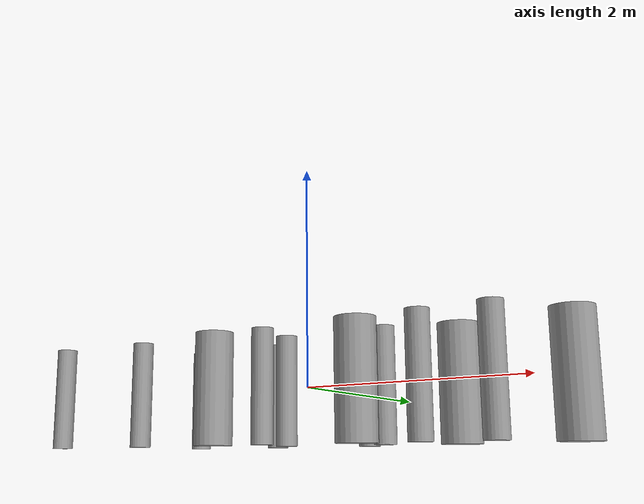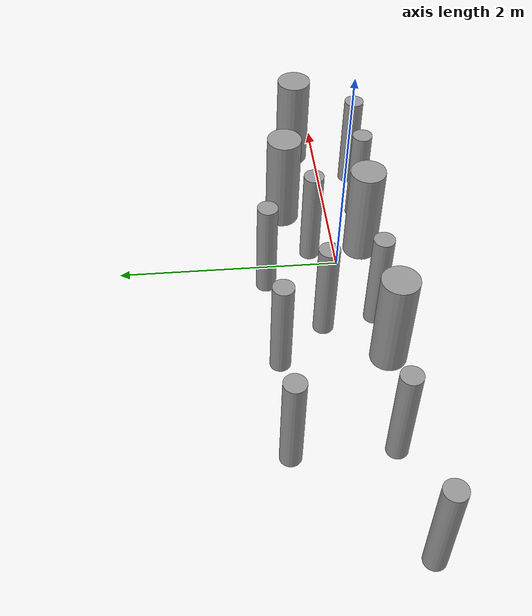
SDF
<?xml version='1.0'?>
<sdf version='1.6'>
  <model name='cyl_wall'>
    <link name='link_0'>
      <pose frame=''>-2.73893 -0.366465 0 0 -0 0</pose>
      <inertial>
        <mass>0.0374993</mass>
        <inertia>
          <ixx>0.00321281</ixx>
          <ixy>0</ixy>
          <ixz>0</ixz>
          <iyy>0.00321281</iyy>
          <iyz>0</iyz>
          <izz>0.000175774</izz>
        </inertia>
        <pose frame=''>0 0 0 0 -0 0</pose>
      </inertial>
      <visual name='visual'>
        <pose frame=''>0 0 0 0 -0 0</pose>
        <geometry>
          <cylinder>
            <radius>0.0968661</radius>
            <length>1</length>
          </cylinder>
        </geometry>
        <material>
          <lighting>1</lighting>
          <script>
            <uri>file://media/materials/scripts/gazebo.material</uri>
            <name>Gazebo/Grey</name>
          </script>
          <ambient>0.3 0.3 0.3 1</ambient>
          <diffuse>0.7 0.7 0.7 1</diffuse>
          <specular>0.01 0.01 0.01 1</specular>
          <emissive>0 0 0 1</emissive>
        </material>
        <cast_shadows>1</cast_shadows>
        <transparency>0</transparency>
      </visual>
      <collision name='collision'>
        <laser_retro>0</laser_retro>
        <max_contacts>10</max_contacts>
        <pose frame=''>0 0 0 0 -0 0</pose>
        <geometry>
          <cylinder>
            <radius>0.096866</radius>
            <length>1</length>
          </cylinder>
        </geometry>
        <surface>
          <friction>
            <ode>
              <mu>1</mu>
              <mu2>1</mu2>
              <fdir1>0 0 0</fdir1>
              <slip1>0</slip1>
              <slip2>0</slip2>
            </ode>
            <torsional>
              <coefficient>1</coefficient>
              <patch_radius>0</patch_radius>
              <surface_radius>0</surface_radius>
              <use_patch_radius>1</use_patch_radius>
              <ode>
                <slip>0</slip>
              </ode>
            </torsional>
          </friction>
          <bounce>
            <restitution_coefficient>0</restitution_coefficient>
            <threshold>1e+06</threshold>
          </bounce>
          <contact>
            <collide_without_contact>0</collide_without_contact>
            <collide_without_contact_bitmask>1</collide_without_contact_bitmask>
            <collide_bitmask>1</collide_bitmask>
            <ode>
              <soft_cfm>0</soft_cfm>
              <soft_erp>0.2</soft_erp>
              <kp>1e+13</kp>
              <kd>1</kd>
              <max_vel>0.01</max_vel>
              <min_depth>0</min_depth>
            </ode>
            <bullet>
              <split_impulse>1</split_impulse>
              <split_impulse_penetration_threshold>-0.01</split_impulse_penetration_threshold>
              <soft_cfm>0</soft_cfm>
              <soft_erp>0.2</soft_erp>
              <kp>1e+13</kp>
              <kd>1</kd>
            </bullet>
          </contact>
        </surface>
      </collision>
    </link>
    <link name='link_0_clone'>
      <pose frame=''>-1.73893 0.61877 0 0 -0 0</pose>
      <inertial>
        <mass>0.0374993</mass>
        <inertia>
          <ixx>0.00321281</ixx>
          <ixy>0</ixy>
          <ixz>0</ixz>
          <iyy>0.00321281</iyy>
          <iyz>0</iyz>
          <izz>0.000175774</izz>
        </inertia>
        <pose frame=''>0 0 0 0 -0 0</pose>
      </inertial>
      <visual name='visual'>
        <pose frame=''>0 0 0 0 -0 0</pose>
        <geometry>
          <cylinder>
            <radius>0.0968661</radius>
            <length>1</length>
          </cylinder>
        </geometry>
        <material>
          <lighting>1</lighting>
          <script>
            <uri>file://media/materials/scripts/gazebo.material</uri>
            <name>Gazebo/Grey</name>
          </script>
          <ambient>0.3 0.3 0.3 1</ambient>
          <diffuse>0.7 0.7 0.7 1</diffuse>
          <specular>0.01 0.01 0.01 1</specular>
          <emissive>0 0 0 1</emissive>
          <shader type='pixel'/>
        </material>
        <cast_shadows>1</cast_shadows>
        <transparency>0</transparency>
      </visual>
      <collision name='collision'>
        <laser_retro>0</laser_retro>
        <max_contacts>10</max_contacts>
        <pose frame=''>0 0 0 0 -0 0</pose>
        <geometry>
          <cylinder>
            <radius>0.096866</radius>
            <length>1</length>
          </cylinder>
        </geometry>
        <surface>
          <friction>
            <ode>
              <mu>1</mu>
              <mu2>1</mu2>
              <fdir1>0 0 0</fdir1>
              <slip1>0</slip1>
              <slip2>0</slip2>
            </ode>
            <torsional>
              <coefficient>1</coefficient>
              <patch_radius>0</patch_radius>
              <surface_radius>0</surface_radius>
              <use_patch_radius>1</use_patch_radius>
              <ode>
                <slip>0</slip>
              </ode>
            </torsional>
          </friction>
          <bounce>
            <restitution_coefficient>0</restitution_coefficient>
            <threshold>1e+06</threshold>
          </bounce>
          <contact>
            <collide_without_contact>0</collide_without_contact>
            <collide_without_contact_bitmask>1</collide_without_contact_bitmask>
            <collide_bitmask>1</collide_bitmask>
            <ode>
              <soft_cfm>0</soft_cfm>
              <soft_erp>0.2</soft_erp>
              <kp>1e+13</kp>
              <kd>1</kd>
              <max_vel>0.01</max_vel>
              <min_depth>0</min_depth>
            </ode>
            <bullet>
              <split_impulse>1</split_impulse>
              <split_impulse_penetration_threshold>-0.01</split_impulse_penetration_threshold>
              <soft_cfm>0</soft_cfm>
              <soft_erp>0.2</soft_erp>
              <kp>1e+13</kp>
              <kd>1</kd>
            </bullet>
          </contact>
        </surface>
      </collision>
    </link>
    <link name='link_0_clone_clone'>
      <pose frame=''>-0.327073 0.143919 0 0 -0 0</pose>
      <inertial>
        <mass>0.0374993</mass>
        <inertia>
          <ixx>0.00321281</ixx>
          <ixy>0</ixy>
          <ixz>0</ixz>
          <iyy>0.00321281</iyy>
          <iyz>0</iyz>
          <izz>0.000175774</izz>
        </inertia>
        <pose frame=''>0 0 0 0 -0 0</pose>
      </inertial>
      <visual name='visual'>
        <pose frame=''>0 0 0 0 -0 0</pose>
        <geometry>
          <cylinder>
            <radius>0.0968661</radius>
            <length>1</length>
          </cylinder>
        </geometry>
        <material>
          <lighting>1</lighting>
          <script>
            <uri>file://media/materials/scripts/gazebo.material</uri>
            <name>Gazebo/Grey</name>
          </script>
          <ambient>0.3 0.3 0.3 1</ambient>
          <diffuse>0.7 0.7 0.7 1</diffuse>
          <specular>0.01 0.01 0.01 1</specular>
          <emissive>0 0 0 1</emissive>
          <shader type='pixel'/>
        </material>
        <cast_shadows>1</cast_shadows>
        <transparency>0</transparency>
      </visual>
      <collision name='collision'>
        <laser_retro>0</laser_retro>
        <max_contacts>10</max_contacts>
        <pose frame=''>0 0 0 0 -0 0</pose>
        <geometry>
          <cylinder>
            <radius>0.096866</radius>
            <length>1</length>
          </cylinder>
        </geometry>
        <surface>
          <friction>
            <ode>
              <mu>1</mu>
              <mu2>1</mu2>
              <fdir1>0 0 0</fdir1>
              <slip1>0</slip1>
              <slip2>0</slip2>
            </ode>
            <torsional>
              <coefficient>1</coefficient>
              <patch_radius>0</patch_radius>
              <surface_radius>0</surface_radius>
              <use_patch_radius>1</use_patch_radius>
              <ode>
                <slip>0</slip>
              </ode>
            </torsional>
          </friction>
          <bounce>
            <restitution_coefficient>0</restitution_coefficient>
            <threshold>1e+06</threshold>
          </bounce>
          <contact>
            <collide_without_contact>0</collide_without_contact>
            <collide_without_contact_bitmask>1</collide_without_contact_bitmask>
            <collide_bitmask>1</collide_bitmask>
            <ode>
              <soft_cfm>0</soft_cfm>
              <soft_erp>0.2</soft_erp>
              <kp>1e+13</kp>
              <kd>1</kd>
              <max_vel>0.01</max_vel>
              <min_depth>0</min_depth>
            </ode>
            <bullet>
              <split_impulse>1</split_impulse>
              <split_impulse_penetration_threshold>-0.01</split_impulse_penetration_threshold>
              <soft_cfm>0</soft_cfm>
              <soft_erp>0.2</soft_erp>
              <kp>1e+13</kp>
              <kd>1</kd>
            </bullet>
          </contact>
        </surface>
      </collision>
    </link>
    <link name='link_0_clone_clone_0'>
      <pose frame=''>1.26107 -0.419359 0 0 -0 0</pose>
      <inertial>
        <mass>0.0374993</mass>
        <inertia>
          <ixx>0.00321281</ixx>
          <ixy>0</ixy>
          <ixz>0</ixz>
          <iyy>0.00321281</iyy>
          <iyz>0</iyz>
          <izz>0.000175774</izz>
        </inertia>
        <pose frame=''>0 0 0 0 -0 0</pose>
      </inertial>
      <visual name='visual'>
        <pose frame=''>0 0 0 0 -0 0</pose>
        <geometry>
          <cylinder>
            <radius>0.0968661</radius>
            <length>1</length>
          </cylinder>
        </geometry>
        <material>
          <lighting>1</lighting>
          <script>
            <uri>file://media/materials/scripts/gazebo.material</uri>
            <name>Gazebo/Grey</name>
          </script>
          <ambient>0.3 0.3 0.3 1</ambient>
          <diffuse>0.7 0.7 0.7 1</diffuse>
          <specular>0.01 0.01 0.01 1</specular>
          <emissive>0 0 0 1</emissive>
          <shader type='pixel'/>
        </material>
        <cast_shadows>1</cast_shadows>
        <transparency>0</transparency>
      </visual>
      <collision name='collision'>
        <laser_retro>0</laser_retro>
        <max_contacts>10</max_contacts>
        <pose frame=''>0 0 0 0 -0 0</pose>
        <geometry>
          <cylinder>
            <radius>0.096866</radius>
            <length>1</length>
          </cylinder>
        </geometry>
        <surface>
          <friction>
            <ode>
              <mu>1</mu>
              <mu2>1</mu2>
              <fdir1>0 0 0</fdir1>
              <slip1>0</slip1>
              <slip2>0</slip2>
            </ode>
            <torsional>
              <coefficient>1</coefficient>
              <patch_radius>0</patch_radius>
              <surface_radius>0</surface_radius>
              <use_patch_radius>1</use_patch_radius>
              <ode>
                <slip>0</slip>
              </ode>
            </torsional>
          </friction>
          <bounce>
            <restitution_coefficient>0</restitution_coefficient>
            <threshold>1e+06</threshold>
          </bounce>
          <contact>
            <collide_without_contact>0</collide_without_contact>
            <collide_without_contact_bitmask>1</collide_without_contact_bitmask>
            <collide_bitmask>1</collide_bitmask>
            <ode>
              <soft_cfm>0</soft_cfm>
              <soft_erp>0.2</soft_erp>
              <kp>1e+13</kp>
              <kd>1</kd>
              <max_vel>0.01</max_vel>
              <min_depth>0</min_depth>
            </ode>
            <bullet>
              <split_impulse>1</split_impulse>
              <split_impulse_penetration_threshold>-0.01</split_impulse_penetration_threshold>
              <soft_cfm>0</soft_cfm>
              <soft_erp>0.2</soft_erp>
              <kp>1e+13</kp>
              <kd>1</kd>
            </bullet>
          </contact>
        </surface>
      </collision>
    </link>
    <link name='link_0_clone_clone_1'>
      <pose frame=''>-1.73893 -0.277168 0 0 -0 0</pose>
      <inertial>
        <mass>0.0374993</mass>
        <inertia>
          <ixx>0.00321281</ixx>
          <ixy>0</ixy>
          <ixz>0</ixz>
          <iyy>0.00321281</iyy>
          <iyz>0</iyz>
          <izz>0.000175774</izz>
        </inertia>
        <pose frame=''>0 0 0 0 -0 0</pose>
      </inertial>
      <visual name='visual'>
        <pose frame=''>0 0 0 0 -0 0</pose>
        <geometry>
          <cylinder>
            <radius>0.0968661</radius>
            <length>1</length>
          </cylinder>
        </geometry>
        <material>
          <lighting>1</lighting>
          <script>
            <uri>file://media/materials/scripts/gazebo.material</uri>
            <name>Gazebo/Grey</name>
          </script>
          <ambient>0.3 0.3 0.3 1</ambient>
          <diffuse>0.7 0.7 0.7 1</diffuse>
          <specular>0.01 0.01 0.01 1</specular>
          <emissive>0 0 0 1</emissive>
          <shader type='pixel'/>
        </material>
        <cast_shadows>1</cast_shadows>
        <transparency>0</transparency>
      </visual>
      <collision name='collision'>
        <laser_retro>0</laser_retro>
        <max_contacts>10</max_contacts>
        <pose frame=''>0 0 0 0 -0 0</pose>
        <geometry>
          <cylinder>
            <radius>0.096866</radius>
            <length>1</length>
          </cylinder>
        </geometry>
        <surface>
          <friction>
            <ode>
              <mu>1</mu>
              <mu2>1</mu2>
              <fdir1>0 0 0</fdir1>
              <slip1>0</slip1>
              <slip2>0</slip2>
            </ode>
            <torsional>
              <coefficient>1</coefficient>
              <patch_radius>0</patch_radius>
              <surface_radius>0</surface_radius>
              <use_patch_radius>1</use_patch_radius>
              <ode>
                <slip>0</slip>
              </ode>
            </torsional>
          </friction>
          <bounce>
            <restitution_coefficient>0</restitution_coefficient>
            <threshold>1e+06</threshold>
          </bounce>
          <contact>
            <collide_without_contact>0</collide_without_contact>
            <collide_without_contact_bitmask>1</collide_without_contact_bitmask>
            <collide_bitmask>1</collide_bitmask>
            <ode>
              <soft_cfm>0</soft_cfm>
              <soft_erp>0.2</soft_erp>
              <kp>1e+13</kp>
              <kd>1</kd>
              <max_vel>0.01</max_vel>
              <min_depth>0</min_depth>
            </ode>
            <bullet>
              <split_impulse>1</split_impulse>
              <split_impulse_penetration_threshold>-0.01</split_impulse_penetration_threshold>
              <soft_cfm>0</soft_cfm>
              <soft_erp>0.2</soft_erp>
              <kp>1e+13</kp>
              <kd>1</kd>
            </bullet>
          </contact>
        </surface>
      </collision>
    </link>
    <link name='link_0_clone_clone_2'>
      <pose frame=''>-0.738934 0.593961 0 0 -0 0</pose>
      <inertial>
        <mass>0.0374993</mass>
        <inertia>
          <ixx>0.00321281</ixx>
          <ixy>0</ixy>
          <ixz>0</ixz>
          <iyy>0.00321281</iyy>
          <iyz>0</iyz>
          <izz>0.000175774</izz>
        </inertia>
        <pose frame=''>0 0 0 0 -0 0</pose>
      </inertial>
      <visual name='visual'>
        <pose frame=''>0 0 0 0 -0 0</pose>
        <geometry>
          <cylinder>
            <radius>0.0968661</radius>
            <length>1</length>
          </cylinder>
        </geometry>
        <material>
          <lighting>1</lighting>
          <script>
            <uri>file://media/materials/scripts/gazebo.material</uri>
            <name>Gazebo/Grey</name>
          </script>
          <ambient>0.3 0.3 0.3 1</ambient>
          <diffuse>0.7 0.7 0.7 1</diffuse>
          <specular>0.01 0.01 0.01 1</specular>
          <emissive>0 0 0 1</emissive>
          <shader type='pixel'/>
        </material>
        <cast_shadows>1</cast_shadows>
        <transparency>0</transparency>
      </visual>
      <collision name='collision'>
        <laser_retro>0</laser_retro>
        <max_contacts>10</max_contacts>
        <pose frame=''>0 0 0 0 -0 0</pose>
        <geometry>
          <cylinder>
            <radius>0.096866</radius>
            <length>1</length>
          </cylinder>
        </geometry>
        <surface>
          <friction>
            <ode>
              <mu>1</mu>
              <mu2>1</mu2>
              <fdir1>0 0 0</fdir1>
              <slip1>0</slip1>
              <slip2>0</slip2>
            </ode>
            <torsional>
              <coefficient>1</coefficient>
              <patch_radius>0</patch_radius>
              <surface_radius>0</surface_radius>
              <use_patch_radius>1</use_patch_radius>
              <ode>
                <slip>0</slip>
              </ode>
            </torsional>
          </friction>
          <bounce>
            <restitution_coefficient>0</restitution_coefficient>
            <threshold>1e+06</threshold>
          </bounce>
          <contact>
            <collide_without_contact>0</collide_without_contact>
            <collide_without_contact_bitmask>1</collide_without_contact_bitmask>
            <collide_bitmask>1</collide_bitmask>
            <ode>
              <soft_cfm>0</soft_cfm>
              <soft_erp>0.2</soft_erp>
              <kp>1e+13</kp>
              <kd>1</kd>
              <max_vel>0.01</max_vel>
              <min_depth>0</min_depth>
            </ode>
            <bullet>
              <split_impulse>1</split_impulse>
              <split_impulse_penetration_threshold>-0.01</split_impulse_penetration_threshold>
              <soft_cfm>0</soft_cfm>
              <soft_erp>0.2</soft_erp>
              <kp>1e+13</kp>
              <kd>1</kd>
            </bullet>
          </contact>
        </surface>
      </collision>
    </link>
    <link name='link_0_clone_clone_3'>
      <pose frame=''>0.261066 0.624849 0 0 -0 0</pose>
      <inertial>
        <mass>0.0374993</mass>
        <inertia>
          <ixx>0.00321281</ixx>
          <ixy>0</ixy>
          <ixz>0</ixz>
          <iyy>0.00321281</iyy>
          <iyz>0</iyz>
          <izz>0.000175774</izz>
        </inertia>
        <pose frame=''>0 0 0 0 -0 0</pose>
      </inertial>
      <visual name='visual'>
        <pose frame=''>0 0 0 0 -0 0</pose>
        <geometry>
          <cylinder>
            <radius>0.0968661</radius>
            <length>1</length>
          </cylinder>
        </geometry>
        <material>
          <lighting>1</lighting>
          <script>
            <uri>file://media/materials/scripts/gazebo.material</uri>
            <name>Gazebo/Grey</name>
          </script>
          <ambient>0.3 0.3 0.3 1</ambient>
          <diffuse>0.7 0.7 0.7 1</diffuse>
          <specular>0.01 0.01 0.01 1</specular>
          <emissive>0 0 0 1</emissive>
          <shader type='pixel'/>
        </material>
        <cast_shadows>1</cast_shadows>
        <transparency>0</transparency>
      </visual>
      <collision name='collision'>
        <laser_retro>0</laser_retro>
        <max_contacts>10</max_contacts>
        <pose frame=''>0 0 0 0 -0 0</pose>
        <geometry>
          <cylinder>
            <radius>0.096866</radius>
            <length>1</length>
          </cylinder>
        </geometry>
        <surface>
          <friction>
            <ode>
              <mu>1</mu>
              <mu2>1</mu2>
              <fdir1>0 0 0</fdir1>
              <slip1>0</slip1>
              <slip2>0</slip2>
            </ode>
            <torsional>
              <coefficient>1</coefficient>
              <patch_radius>0</patch_radius>
              <surface_radius>0</surface_radius>
              <use_patch_radius>1</use_patch_radius>
              <ode>
                <slip>0</slip>
              </ode>
            </torsional>
          </friction>
          <bounce>
            <restitution_coefficient>0</restitution_coefficient>
            <threshold>1e+06</threshold>
          </bounce>
          <contact>
            <collide_without_contact>0</collide_without_contact>
            <collide_without_contact_bitmask>1</collide_without_contact_bitmask>
            <collide_bitmask>1</collide_bitmask>
            <ode>
              <soft_cfm>0</soft_cfm>
              <soft_erp>0.2</soft_erp>
              <kp>1e+13</kp>
              <kd>1</kd>
              <max_vel>0.01</max_vel>
              <min_depth>0</min_depth>
            </ode>
            <bullet>
              <split_impulse>1</split_impulse>
              <split_impulse_penetration_threshold>-0.01</split_impulse_penetration_threshold>
              <soft_cfm>0</soft_cfm>
              <soft_erp>0.2</soft_erp>
              <kp>1e+13</kp>
              <kd>1</kd>
            </bullet>
          </contact>
        </surface>
      </collision>
    </link>
    <link name='link_0_clone_clone_4'>
      <pose frame=''>-0.239049 -0.353105 0 0 -0 0</pose>
      <inertial>
        <mass>0.0374993</mass>
        <inertia>
          <ixx>0.00321281</ixx>
          <ixy>0</ixy>
          <ixz>0</ixz>
          <iyy>0.00321281</iyy>
          <iyz>0</iyz>
          <izz>0.000175774</izz>
        </inertia>
        <pose frame=''>0 0 0 0 -0 0</pose>
      </inertial>
      <visual name='visual'>
        <pose frame=''>0 0 0 0 -0 0</pose>
        <geometry>
          <cylinder>
            <radius>0.0968661</radius>
            <length>1</length>
          </cylinder>
        </geometry>
        <material>
          <lighting>1</lighting>
          <script>
            <uri>file://media/materials/scripts/gazebo.material</uri>
            <name>Gazebo/Grey</name>
          </script>
          <ambient>0.3 0.3 0.3 1</ambient>
          <diffuse>0.7 0.7 0.7 1</diffuse>
          <specular>0.01 0.01 0.01 1</specular>
          <emissive>0 0 0 1</emissive>
          <shader type='pixel'/>
        </material>
        <cast_shadows>1</cast_shadows>
        <transparency>0</transparency>
      </visual>
      <collision name='collision'>
        <laser_retro>0</laser_retro>
        <max_contacts>10</max_contacts>
        <pose frame=''>0 0 0 0 -0 0</pose>
        <geometry>
          <cylinder>
            <radius>0.096866</radius>
            <length>1</length>
          </cylinder>
        </geometry>
        <surface>
          <friction>
            <ode>
              <mu>1</mu>
              <mu2>1</mu2>
              <fdir1>0 0 0</fdir1>
              <slip1>0</slip1>
              <slip2>0</slip2>
            </ode>
            <torsional>
              <coefficient>1</coefficient>
              <patch_radius>0</patch_radius>
              <surface_radius>0</surface_radius>
              <use_patch_radius>1</use_patch_radius>
              <ode>
                <slip>0</slip>
              </ode>
            </torsional>
          </friction>
          <bounce>
            <restitution_coefficient>0</restitution_coefficient>
            <threshold>1e+06</threshold>
          </bounce>
          <contact>
            <collide_without_contact>0</collide_without_contact>
            <collide_without_contact_bitmask>1</collide_without_contact_bitmask>
            <collide_bitmask>1</collide_bitmask>
            <ode>
              <soft_cfm>0</soft_cfm>
              <soft_erp>0.2</soft_erp>
              <kp>1e+13</kp>
              <kd>1</kd>
              <max_vel>0.01</max_vel>
              <min_depth>0</min_depth>
            </ode>
            <bullet>
              <split_impulse>1</split_impulse>
              <split_impulse_penetration_threshold>-0.01</split_impulse_penetration_threshold>
              <soft_cfm>0</soft_cfm>
              <soft_erp>0.2</soft_erp>
              <kp>1e+13</kp>
              <kd>1</kd>
            </bullet>
          </contact>
        </surface>
      </collision>
    </link>
    <link name='link_0_clone_clone_5'>
      <pose frame=''>0.672792 0.143919 0 0 -0 0</pose>
      <inertial>
        <mass>0.0374993</mass>
        <inertia>
          <ixx>0.00321281</ixx>
          <ixy>0</ixy>
          <ixz>0</ixz>
          <iyy>0.00321281</iyy>
          <iyz>0</iyz>
          <izz>0.000175774</izz>
        </inertia>
        <pose frame=''>0 0 0 0 -0 0</pose>
      </inertial>
      <visual name='visual'>
        <pose frame=''>0 0 0 0 -0 0</pose>
        <geometry>
          <cylinder>
            <radius>0.0968661</radius>
            <length>1</length>
          </cylinder>
        </geometry>
        <material>
          <lighting>1</lighting>
          <script>
            <uri>file://media/materials/scripts/gazebo.material</uri>
            <name>Gazebo/Grey</name>
          </script>
          <ambient>0.3 0.3 0.3 1</ambient>
          <diffuse>0.7 0.7 0.7 1</diffuse>
          <specular>0.01 0.01 0.01 1</specular>
          <emissive>0 0 0 1</emissive>
          <shader type='pixel'/>
        </material>
        <cast_shadows>1</cast_shadows>
        <transparency>0</transparency>
      </visual>
      <collision name='collision'>
        <laser_retro>0</laser_retro>
        <max_contacts>10</max_contacts>
        <pose frame=''>0 0 0 0 -0 0</pose>
        <geometry>
          <cylinder>
            <radius>0.096866</radius>
            <length>1</length>
          </cylinder>
        </geometry>
        <surface>
          <friction>
            <ode>
              <mu>1</mu>
              <mu2>1</mu2>
              <fdir1>0 0 0</fdir1>
              <slip1>0</slip1>
              <slip2>0</slip2>
            </ode>
            <torsional>
              <coefficient>1</coefficient>
              <patch_radius>0</patch_radius>
              <surface_radius>0</surface_radius>
              <use_patch_radius>1</use_patch_radius>
              <ode>
                <slip>0</slip>
              </ode>
            </torsional>
          </friction>
          <bounce>
            <restitution_coefficient>0</restitution_coefficient>
            <threshold>1e+06</threshold>
          </bounce>
          <contact>
            <collide_without_contact>0</collide_without_contact>
            <collide_without_contact_bitmask>1</collide_without_contact_bitmask>
            <collide_bitmask>1</collide_bitmask>
            <ode>
              <soft_cfm>0</soft_cfm>
              <soft_erp>0.2</soft_erp>
              <kp>1e+13</kp>
              <kd>1</kd>
              <max_vel>0.01</max_vel>
              <min_depth>0</min_depth>
            </ode>
            <bullet>
              <split_impulse>1</split_impulse>
              <split_impulse_penetration_threshold>-0.01</split_impulse_penetration_threshold>
              <soft_cfm>0</soft_cfm>
              <soft_erp>0.2</soft_erp>
              <kp>1e+13</kp>
              <kd>1</kd>
            </bullet>
          </contact>
        </surface>
      </collision>
    </link>
    <link name='link_0_clone_clone_6'>
      <pose frame=''>1.84596 -0.433423 0 0 -0 0</pose>
      <inertial>
        <mass>0.0374993</mass>
        <inertia>
          <ixx>0.00321281</ixx>
          <ixy>0</ixy>
          <ixz>0</ixz>
          <iyy>0.00321281</iyy>
          <iyz>0</iyz>
          <izz>0.000175774</izz>
        </inertia>
        <pose frame=''>0 0 0 0 -0 0</pose>
      </inertial>
      <visual name='visual'>
        <pose frame=''>0 0 0 0 -0 0</pose>
        <geometry>
          <cylinder>
            <radius>0.0968661</radius>
            <length>1</length>
          </cylinder>
        </geometry>
        <material>
          <lighting>1</lighting>
          <script>
            <uri>file://media/materials/scripts/gazebo.material</uri>
            <name>Gazebo/Grey</name>
          </script>
          <ambient>0.3 0.3 0.3 1</ambient>
          <diffuse>0.7 0.7 0.7 1</diffuse>
          <specular>0.01 0.01 0.01 1</specular>
          <emissive>0 0 0 1</emissive>
          <shader type='pixel'/>
        </material>
        <cast_shadows>1</cast_shadows>
        <transparency>0</transparency>
      </visual>
      <collision name='collision'>
        <laser_retro>0</laser_retro>
        <max_contacts>10</max_contacts>
        <pose frame=''>0 0 0 0 -0 0</pose>
        <geometry>
          <cylinder>
            <radius>0.096866</radius>
            <length>1</length>
          </cylinder>
        </geometry>
        <surface>
          <friction>
            <ode>
              <mu>1</mu>
              <mu2>1</mu2>
              <fdir1>0 0 0</fdir1>
              <slip1>0</slip1>
              <slip2>0</slip2>
            </ode>
            <torsional>
              <coefficient>1</coefficient>
              <patch_radius>0</patch_radius>
              <surface_radius>0</surface_radius>
              <use_patch_radius>1</use_patch_radius>
              <ode>
                <slip>0</slip>
              </ode>
            </torsional>
          </friction>
          <bounce>
            <restitution_coefficient>0</restitution_coefficient>
            <threshold>1e+06</threshold>
          </bounce>
          <contact>
            <collide_without_contact>0</collide_without_contact>
            <collide_without_contact_bitmask>1</collide_without_contact_bitmask>
            <collide_bitmask>1</collide_bitmask>
            <ode>
              <soft_cfm>0</soft_cfm>
              <soft_erp>0.2</soft_erp>
              <kp>1e+13</kp>
              <kd>1</kd>
              <max_vel>0.01</max_vel>
              <min_depth>0</min_depth>
            </ode>
            <bullet>
              <split_impulse>1</split_impulse>
              <split_impulse_penetration_threshold>-0.01</split_impulse_penetration_threshold>
              <soft_cfm>0</soft_cfm>
              <soft_erp>0.2</soft_erp>
              <kp>1e+13</kp>
              <kd>1</kd>
            </bullet>
          </contact>
        </surface>
      </collision>
    </link>
    <link name='link_1'>
      <pose frame=''>-0.738934 -0.397931 0 0 -0 0</pose>
      <inertial>
        <mass>0.117398</mass>
        <inertia>
          <ixx>0.0106445</ixx>
          <ixy>0</ixy>
          <ixz>0</ixz>
          <iyy>0.0106445</iyy>
          <iyz>0</iyz>
          <izz>0.00172278</izz>
        </inertia>
        <pose frame=''>0 0 0 0 -0 0</pose>
      </inertial>
      <visual name='visual'>
        <pose frame=''>0 0 0 0 -0 0</pose>
        <geometry>
          <cylinder>
            <radius>0.171317</radius>
            <length>1</length>
          </cylinder>
        </geometry>
        <material>
          <lighting>1</lighting>
          <script>
            <uri>file://media/materials/scripts/gazebo.material</uri>
            <name>Gazebo/Grey</name>
          </script>
          <ambient>0.3 0.3 0.3 1</ambient>
          <diffuse>0.7 0.7 0.7 1</diffuse>
          <specular>0.01 0.01 0.01 1</specular>
          <emissive>0 0 0 1</emissive>
        </material>
        <cast_shadows>1</cast_shadows>
        <transparency>0</transparency>
      </visual>
      <collision name='collision'>
        <laser_retro>0</laser_retro>
        <max_contacts>10</max_contacts>
        <pose frame=''>0 0 0 0 -0 0</pose>
        <geometry>
          <cylinder>
            <radius>0.171317</radius>
            <length>1</length>
          </cylinder>
        </geometry>
        <surface>
          <friction>
            <ode>
              <mu>1</mu>
              <mu2>1</mu2>
              <fdir1>0 0 0</fdir1>
              <slip1>0</slip1>
              <slip2>0</slip2>
            </ode>
            <torsional>
              <coefficient>1</coefficient>
              <patch_radius>0</patch_radius>
              <surface_radius>0</surface_radius>
              <use_patch_radius>1</use_patch_radius>
              <ode>
                <slip>0</slip>
              </ode>
            </torsional>
          </friction>
          <bounce>
            <restitution_coefficient>0</restitution_coefficient>
            <threshold>1e+06</threshold>
          </bounce>
          <contact>
            <collide_without_contact>0</collide_without_contact>
            <collide_without_contact_bitmask>1</collide_without_contact_bitmask>
            <collide_bitmask>1</collide_bitmask>
            <ode>
              <soft_cfm>0</soft_cfm>
              <soft_erp>0.2</soft_erp>
              <kp>1e+13</kp>
              <kd>1</kd>
              <max_vel>0.01</max_vel>
              <min_depth>0</min_depth>
            </ode>
            <bullet>
              <split_impulse>1</split_impulse>
              <split_impulse_penetration_threshold>-0.01</split_impulse_penetration_threshold>
              <soft_cfm>0</soft_cfm>
              <soft_erp>0.2</soft_erp>
              <kp>1e+13</kp>
              <kd>1</kd>
            </bullet>
          </contact>
        </surface>
      </collision>
    </link>
    <link name='link_1_clone'>
      <pose frame=''>0.697784 -0.380861 0 0 -0 0</pose>
      <inertial>
        <mass>0.117398</mass>
        <inertia>
          <ixx>0.0106445</ixx>
          <ixy>0</ixy>
          <ixz>0</ixz>
          <iyy>0.0106445</iyy>
          <iyz>0</iyz>
          <izz>0.00172278</izz>
        </inertia>
        <pose frame=''>0 0 0 0 -0 0</pose>
      </inertial>
      <visual name='visual'>
        <pose frame=''>0 0 0 0 -0 0</pose>
        <geometry>
          <cylinder>
            <radius>0.171317</radius>
            <length>1</length>
          </cylinder>
        </geometry>
        <material>
          <lighting>1</lighting>
          <script>
            <uri>file://media/materials/scripts/gazebo.material</uri>
            <name>Gazebo/Grey</name>
          </script>
          <ambient>0.3 0.3 0.3 1</ambient>
          <diffuse>0.7 0.7 0.7 1</diffuse>
          <specular>0.01 0.01 0.01 1</specular>
          <emissive>0 0 0 1</emissive>
          <shader type='pixel'/>
        </material>
        <cast_shadows>1</cast_shadows>
        <transparency>0</transparency>
      </visual>
      <collision name='collision'>
        <laser_retro>0</laser_retro>
        <max_contacts>10</max_contacts>
        <pose frame=''>0 0 0 0 -0 0</pose>
        <geometry>
          <cylinder>
            <radius>0.171317</radius>
            <length>1</length>
          </cylinder>
        </geometry>
        <surface>
          <friction>
            <ode>
              <mu>1</mu>
              <mu2>1</mu2>
              <fdir1>0 0 0</fdir1>
              <slip1>0</slip1>
              <slip2>0</slip2>
            </ode>
            <torsional>
              <coefficient>1</coefficient>
              <patch_radius>0</patch_radius>
              <surface_radius>0</surface_radius>
              <use_patch_radius>1</use_patch_radius>
              <ode>
                <slip>0</slip>
              </ode>
            </torsional>
          </friction>
          <bounce>
            <restitution_coefficient>0</restitution_coefficient>
            <threshold>1e+06</threshold>
          </bounce>
          <contact>
            <collide_without_contact>0</collide_without_contact>
            <collide_without_contact_bitmask>1</collide_without_contact_bitmask>
            <collide_bitmask>1</collide_bitmask>
            <ode>
              <soft_cfm>0</soft_cfm>
              <soft_erp>0.2</soft_erp>
              <kp>1e+13</kp>
              <kd>1</kd>
              <max_vel>0.01</max_vel>
              <min_depth>0</min_depth>
            </ode>
            <bullet>
              <split_impulse>1</split_impulse>
              <split_impulse_penetration_threshold>-0.01</split_impulse_penetration_threshold>
              <soft_cfm>0</soft_cfm>
              <soft_erp>0.2</soft_erp>
              <kp>1e+13</kp>
              <kd>1</kd>
            </bullet>
          </contact>
        </surface>
      </collision>
    </link>
    <link name='link_1_clone_0'>
      <pose frame=''>1.26107 0.358974 0 0 -0 0</pose>
      <inertial>
        <mass>0.117398</mass>
        <inertia>
          <ixx>0.0106445</ixx>
          <ixy>0</ixy>
          <ixz>0</ixz>
          <iyy>0.0106445</iyy>
          <iyz>0</iyz>
          <izz>0.00172278</izz>
        </inertia>
        <pose frame=''>0 0 0 0 -0 0</pose>
      </inertial>
      <visual name='visual'>
        <pose frame=''>0 0 0 0 -0 0</pose>
        <geometry>
          <cylinder>
            <radius>0.171317</radius>
            <length>1</length>
          </cylinder>
        </geometry>
        <material>
          <lighting>1</lighting>
          <script>
            <uri>file://media/materials/scripts/gazebo.material</uri>
            <name>Gazebo/Grey</name>
          </script>
          <ambient>0.3 0.3 0.3 1</ambient>
          <diffuse>0.7 0.7 0.7 1</diffuse>
          <specular>0.01 0.01 0.01 1</specular>
          <emissive>0 0 0 1</emissive>
          <shader type='pixel'/>
        </material>
        <cast_shadows>1</cast_shadows>
        <transparency>0</transparency>
      </visual>
      <collision name='collision'>
        <laser_retro>0</laser_retro>
        <max_contacts>10</max_contacts>
        <pose frame=''>0 0 0 0 -0 0</pose>
        <geometry>
          <cylinder>
            <radius>0.171317</radius>
            <length>1</length>
          </cylinder>
        </geometry>
        <surface>
          <friction>
            <ode>
              <mu>1</mu>
              <mu2>1</mu2>
              <fdir1>0 0 0</fdir1>
              <slip1>0</slip1>
              <slip2>0</slip2>
            </ode>
            <torsional>
              <coefficient>1</coefficient>
              <patch_radius>0</patch_radius>
              <surface_radius>0</surface_radius>
              <use_patch_radius>1</use_patch_radius>
              <ode>
                <slip>0</slip>
              </ode>
            </torsional>
          </friction>
          <bounce>
            <restitution_coefficient>0</restitution_coefficient>
            <threshold>1e+06</threshold>
          </bounce>
          <contact>
            <collide_without_contact>0</collide_without_contact>
            <collide_without_contact_bitmask>1</collide_without_contact_bitmask>
            <collide_bitmask>1</collide_bitmask>
            <ode>
              <soft_cfm>0</soft_cfm>
              <soft_erp>0.2</soft_erp>
              <kp>1e+13</kp>
              <kd>1</kd>
              <max_vel>0.01</max_vel>
              <min_depth>0</min_depth>
            </ode>
            <bullet>
              <split_impulse>1</split_impulse>
              <split_impulse_penetration_threshold>-0.01</split_impulse_penetration_threshold>
              <soft_cfm>0</soft_cfm>
              <soft_erp>0.2</soft_erp>
              <kp>1e+13</kp>
              <kd>1</kd>
            </bullet>
          </contact>
        </surface>
      </collision>
    </link>
    <link name='link_1_clone_1'>
      <pose frame=''>2.26107 0.143919 0 0 -0 0</pose>
      <inertial>
        <mass>0.117398</mass>
        <inertia>
          <ixx>0.0106445</ixx>
          <ixy>0</ixy>
          <ixz>0</ixz>
          <iyy>0.0106445</iyy>
          <iyz>0</iyz>
          <izz>0.00172278</izz>
        </inertia>
        <pose frame=''>0 0 0 0 -0 0</pose>
      </inertial>
      <visual name='visual'>
        <pose frame=''>0 0 0 0 -0 0</pose>
        <geometry>
          <cylinder>
            <radius>0.171317</radius>
            <length>1</length>
          </cylinder>
        </geometry>
        <material>
          <lighting>1</lighting>
          <script>
            <uri>file://media/materials/scripts/gazebo.material</uri>
            <name>Gazebo/Grey</name>
          </script>
          <ambient>0.3 0.3 0.3 1</ambient>
          <diffuse>0.7 0.7 0.7 1</diffuse>
          <specular>0.01 0.01 0.01 1</specular>
          <emissive>0 0 0 1</emissive>
          <shader type='pixel'/>
        </material>
        <cast_shadows>1</cast_shadows>
        <transparency>0</transparency>
      </visual>
      <collision name='collision'>
        <laser_retro>0</laser_retro>
        <max_contacts>10</max_contacts>
        <pose frame=''>0 0 0 0 -0 0</pose>
        <geometry>
          <cylinder>
            <radius>0.171317</radius>
            <length>1</length>
          </cylinder>
        </geometry>
        <surface>
          <friction>
            <ode>
              <mu>1</mu>
              <mu2>1</mu2>
              <fdir1>0 0 0</fdir1>
              <slip1>0</slip1>
              <slip2>0</slip2>
            </ode>
            <torsional>
              <coefficient>1</coefficient>
              <patch_radius>0</patch_radius>
              <surface_radius>0</surface_radius>
              <use_patch_radius>1</use_patch_radius>
              <ode>
                <slip>0</slip>
              </ode>
            </torsional>
          </friction>
          <bounce>
            <restitution_coefficient>0</restitution_coefficient>
            <threshold>1e+06</threshold>
          </bounce>
          <contact>
            <collide_without_contact>0</collide_without_contact>
            <collide_without_contact_bitmask>1</collide_without_contact_bitmask>
            <collide_bitmask>1</collide_bitmask>
            <ode>
              <soft_cfm>0</soft_cfm>
              <soft_erp>0.2</soft_erp>
              <kp>1e+13</kp>
              <kd>1</kd>
              <max_vel>0.01</max_vel>
              <min_depth>0</min_depth>
            </ode>
            <bullet>
              <split_impulse>1</split_impulse>
              <split_impulse_penetration_threshold>-0.01</split_impulse_penetration_threshold>
              <soft_cfm>0</soft_cfm>
              <soft_erp>0.2</soft_erp>
              <kp>1e+13</kp>
              <kd>1</kd>
            </bullet>
          </contact>
        </surface>
      </collision>
    </link>
    <static>1</static>
    <allow_auto_disable>1</allow_auto_disable>
  </model>
</sdf>
